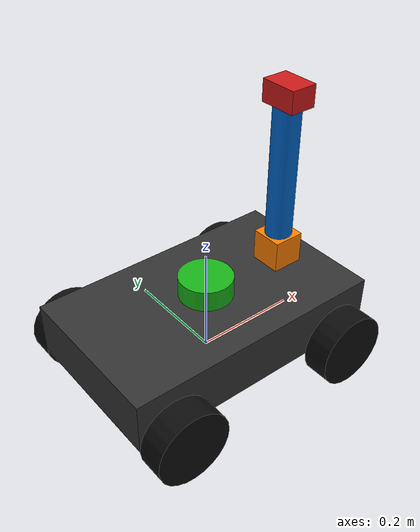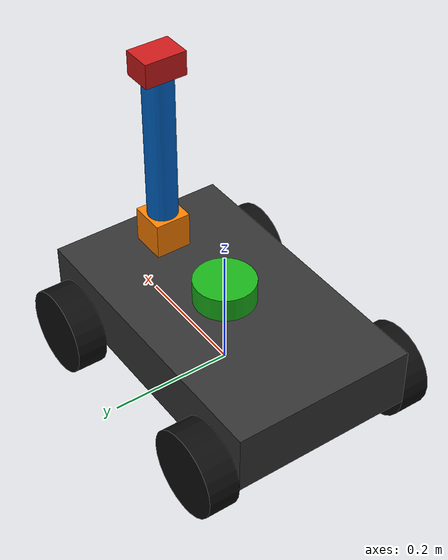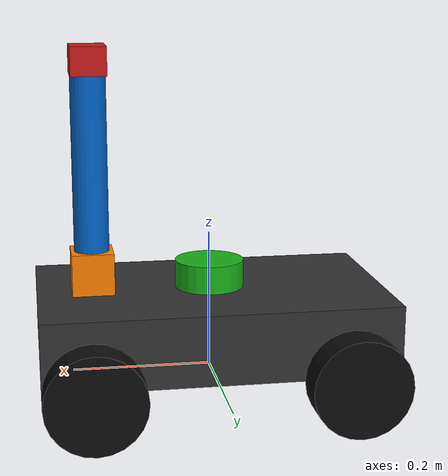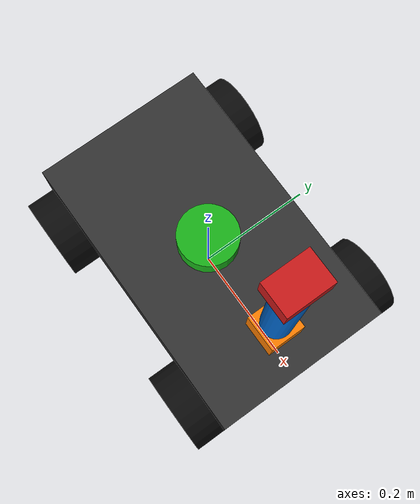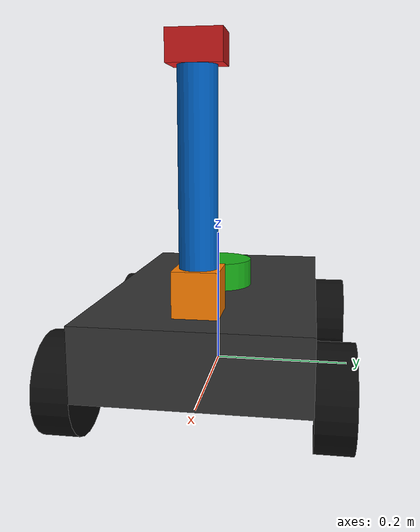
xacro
<?xml version="1.0"?>
<robot xmlns:xacro="http://www.ros.org/wiki/xacro" name="robot_car">

  <!-- ===== PROPERTIES ===== -->
  <xacro:property name="chassis_length" value="0.50"/>
  <xacro:property name="chassis_width"  value="0.30"/>
  <xacro:property name="chassis_height" value="0.10"/>
  <xacro:property name="chassis_mass"   value="5.0"/>
  <xacro:property name="wheel_radius"   value="0.07"/>
  <xacro:property name="wheel_width"    value="0.05"/>
  <xacro:property name="wheel_mass"     value="0.5"/>
  <xacro:property name="arm_length"     value="0.25"/>
  <xacro:property name="arm_radius"     value="0.025"/>
  <xacro:property name="arm_mass"       value="0.3"/>

  <!-- ===== MATERIALS ===== -->
  <material name="dark_grey"> <color rgba="0.2 0.2 0.2 1.0"/> </material>
  <material name="orange">    <color rgba="1.0 0.5 0.0 1.0"/> </material>
  <material name="blue">      <color rgba="0.0 0.4 0.8 1.0"/> </material>
  <material name="red">       <color rgba="0.8 0.1 0.1 1.0"/> </material>
  <material name="green">     <color rgba="0.1 0.7 0.1 1.0"/> </material>
  <material name="white">     <color rgba="1.0 1.0 1.0 1.0"/> </material>
  <material name="black">     <color rgba="0.05 0.05 0.05 1.0"/> </material>

  <!-- ===== INERTIA MACROS ===== -->
  <xacro:macro name="box_inertia" params="m l w h">
    <inertial>
      <mass value="${m}"/>
      <inertia ixx="${m*(w*w+h*h)/12}" ixy="0" ixz="0"
               iyy="${m*(l*l+h*h)/12}" iyz="0"
               izz="${m*(l*l+w*w)/12}"/>
    </inertial>
  </xacro:macro>

  <xacro:macro name="cylinder_inertia" params="m r h">
    <inertial>
      <mass value="${m}"/>
      <inertia ixx="${m*(3*r*r+h*h)/12}" ixy="0" ixz="0"
               iyy="${m*(3*r*r+h*h)/12}" iyz="0"
               izz="${m*r*r/2}"/>
    </inertial>
  </xacro:macro>

  <!-- ===== WHEEL MACRO ===== -->
  <xacro:macro name="wheel" params="name parent x y">
    <link name="${name}_wheel">
      <visual>
        <geometry><cylinder radius="${wheel_radius}" length="${wheel_width}"/></geometry>
        <material name="black"/>
      </visual>
      <collision>
        <geometry><cylinder radius="${wheel_radius}" length="${wheel_width}"/></geometry>
      </collision>
      <xacro:cylinder_inertia m="${wheel_mass}" r="${wheel_radius}" h="${wheel_width}"/>
    </link>

    <joint name="${name}_wheel_joint" type="continuous">
      <parent link="${parent}"/>
      <child  link="${name}_wheel"/>
      <origin xyz="${x} ${y} ${-chassis_height/2}" rpy="${pi/2} 0 0"/>
      <axis xyz="0 0 1"/>
      <dynamics damping="0.1" friction="0.1"/>
    </joint>

    <gazebo reference="${name}_wheel">
      <mu1>1.0</mu1>
      <mu2>1.0</mu2>
      <kp>500000.0</kp>
      <kd>10.0</kd>
      <material>Gazebo/Black</material>
    </gazebo>
  </xacro:macro>

  <!-- ===== CHASSIS ===== -->
  <link name="base_footprint"/>

  <joint name="base_joint" type="fixed">
    <parent link="base_footprint"/>
    <child  link="base_link"/>
    <origin xyz="0 0 ${wheel_radius}" rpy="0 0 0"/>
  </joint>

  <link name="base_link">
    <visual>
      <geometry><box size="${chassis_length} ${chassis_width} ${chassis_height}"/></geometry>
      <material name="dark_grey"/>
    </visual>
    <collision>
      <geometry><box size="${chassis_length} ${chassis_width} ${chassis_height}"/></geometry>
    </collision>
    <xacro:box_inertia m="${chassis_mass}" l="${chassis_length}" w="${chassis_width}" h="${chassis_height}"/>
  </link>

  <gazebo reference="base_link">
    <material>Gazebo/DarkGrey</material>
  </gazebo>

  <!-- ===== 4 WHEELS ===== -->
  <xacro:wheel name="front_left"  parent="base_link"
    x=" ${chassis_length/2 - 0.07}" y=" ${chassis_width/2 + wheel_width/2}"/>
  <xacro:wheel name="front_right" parent="base_link"
    x=" ${chassis_length/2 - 0.07}" y="${-chassis_width/2 - wheel_width/2}"/>
  <xacro:wheel name="rear_left"   parent="base_link"
    x="${-chassis_length/2 + 0.07}" y=" ${chassis_width/2 + wheel_width/2}"/>
  <xacro:wheel name="rear_right"  parent="base_link"
    x="${-chassis_length/2 + 0.07}" y="${-chassis_width/2 - wheel_width/2}"/>

  <!-- ===== ARM BASE ===== -->
  <link name="arm_base_link">
    <visual>
      <geometry><box size="0.06 0.06 0.06"/></geometry>
      <material name="orange"/>
    </visual>
    <collision>
      <geometry><box size="0.06 0.06 0.06"/></geometry>
    </collision>
    <xacro:box_inertia m="0.15" l="0.06" w="0.06" h="0.06"/>
  </link>

  <joint name="arm_base_joint" type="fixed">
    <parent link="base_link"/>
    <child  link="arm_base_link"/>
    <origin xyz="${chassis_length/2 - 0.08} 0 ${chassis_height/2 + 0.03}" rpy="0 0 0"/>
  </joint>

  <!-- ===== ARM LINK1 ===== -->
  <link name="arm_link1">
    <visual>
      <origin xyz="0 0 ${arm_length/2}" rpy="0 0 0"/>
      <geometry><cylinder radius="${arm_radius}" length="${arm_length}"/></geometry>
      <material name="blue"/>
    </visual>
    <collision>
      <origin xyz="0 0 ${arm_length/2}" rpy="0 0 0"/>
      <geometry><cylinder radius="${arm_radius}" length="${arm_length}"/></geometry>
    </collision>
    <xacro:cylinder_inertia m="${arm_mass}" r="${arm_radius}" h="${arm_length}"/>
  </link>

  <joint name="arm_joint1" type="revolute">
    <parent link="arm_base_link"/>
    <child  link="arm_link1"/>
    <origin xyz="0 0 0.03" rpy="0 0 0"/>
    <axis xyz="0 1 0"/>
    <limit lower="-1.57" upper="1.57" effort="10.0" velocity="1.0"/>
    <dynamics damping="0.5" friction="0.1"/>
  </joint>

  <!-- ===== CAMERA LINK ===== -->
  <link name="camera_link">
    <visual>
      <geometry><box size="0.05 0.07 0.04"/></geometry>
      <material name="red"/>
    </visual>
    <collision>
      <geometry><box size="0.05 0.07 0.04"/></geometry>
    </collision>
    <inertial>
      <mass value="0.1"/>
      <inertia ixx="0.0001" ixy="0" ixz="0" iyy="0.0001" iyz="0" izz="0.0001"/>
    </inertial>
  </link>

  <joint name="camera_joint" type="fixed">
    <parent link="arm_link1"/>
    <child  link="camera_link"/>
    <origin xyz="0 0 ${arm_length + 0.02}" rpy="0 0 0"/>
  </joint>

  <link name="camera_optical_frame"/>
  <joint name="camera_optical_joint" type="fixed">
    <parent link="camera_link"/>
    <child  link="camera_optical_frame"/>
    <origin xyz="0 0 0" rpy="${-pi/2} 0 ${-pi/2}"/>
  </joint>

  <gazebo reference="camera_link">
    <sensor name="depth_camera" type="depth_camera">
      <always_on>true</always_on>
      <update_rate>15</update_rate>
      <topic>depth_camera</topic>
      <gz_frame_id>camera_optical_frame</gz_frame_id>
      <camera name="depth_camera">
        <horizontal_fov>1.047</horizontal_fov>
        <image>
          <width>640</width>
          <height>480</height>
          <format>R_FLOAT32</format>
        </image>
        <clip><near>0.1</near><far>10.0</far></clip>
      </camera>
    </sensor>
    <sensor name="rgb_camera" type="camera">
      <always_on>true</always_on>
      <update_rate>15</update_rate>
      <topic>rgb_camera</topic>
      <gz_frame_id>camera_optical_frame</gz_frame_id>
      <camera name="rgb_camera">
        <horizontal_fov>1.047</horizontal_fov>
        <image>
          <width>640</width>
          <height>480</height>
          <format>RGB_INT8</format>
        </image>
        <clip><near>0.1</near><far>100.0</far></clip>
      </camera>
    </sensor>
    <material>Gazebo/Red</material>
  </gazebo>

  <!-- ===== LIDAR ===== -->
  <link name="lidar_link">
    <visual>
      <geometry><cylinder radius="0.05" length="0.04"/></geometry>
      <material name="green"/>
    </visual>
    <collision>
      <geometry><cylinder radius="0.05" length="0.04"/></geometry>
    </collision>
    <inertial>
      <mass value="0.2"/>
      <inertia ixx="0.0002" ixy="0" ixz="0" iyy="0.0002" iyz="0" izz="0.0002"/>
    </inertial>
  </link>

  <joint name="lidar_joint" type="fixed">
    <parent link="base_link"/>
    <child  link="lidar_link"/>
    <origin xyz="0 0 ${chassis_height/2 + 0.02}" rpy="0 0 0"/>
  </joint>

  <gazebo reference="lidar_link">
    <sensor name="lidar" type="gpu_lidar">
      <always_on>true</always_on>
      <update_rate>10</update_rate>
      <topic>scan</topic>
      <gz_frame_id>lidar_link</gz_frame_id>
      <visualize>true</visualize>
      <lidar>
        <scan>
          <horizontal>
            <samples>360</samples>
            <resolution>1</resolution>
            <min_angle>-3.14159</min_angle>
            <max_angle> 3.14159</max_angle>
          </horizontal>
        </scan>
        <range>
          <min>0.15</min>
          <max>12.0</max>
          <resolution>0.01</resolution>
        </range>
        <noise>
          <type>gaussian</type>
          <mean>0.0</mean>
          <stddev>0.005</stddev>
        </noise>
      </lidar>
    </sensor>
    <material>Gazebo/Green</material>
  </gazebo>

  <!-- ===== IMU ===== -->
  <link name="imu_link">
    <visual>
      <geometry><box size="0.03 0.03 0.01"/></geometry>
      <material name="white"/>
    </visual>
    <collision>
      <geometry><box size="0.03 0.03 0.01"/></geometry>
    </collision>
    <inertial>
      <mass value="0.05"/>
      <inertia ixx="0.000001" ixy="0" ixz="0" iyy="0.000001" iyz="0" izz="0.000001"/>
    </inertial>
  </link>

  <joint name="imu_joint" type="fixed">
    <parent link="base_link"/>
    <child  link="imu_link"/>
    <origin xyz="0 0 0" rpy="0 0 0"/>
  </joint>

  <gazebo reference="imu_link">
    <sensor name="imu" type="imu">
      <always_on>true</always_on>
      <update_rate>100</update_rate>
      <topic>imu</topic>
      <gz_frame_id>imu_link</gz_frame_id>
      <imu>
        <angular_velocity>
          <x><noise type="gaussian"><mean>0</mean><stddev>0.009</stddev></noise></x>
          <y><noise type="gaussian"><mean>0</mean><stddev>0.009</stddev></noise></y>
          <z><noise type="gaussian"><mean>0</mean><stddev>0.009</stddev></noise></z>
        </angular_velocity>
        <linear_acceleration>
          <x><noise type="gaussian"><mean>0</mean><stddev>0.1</stddev></noise></x>
          <y><noise type="gaussian"><mean>0</mean><stddev>0.1</stddev></noise></y>
          <z><noise type="gaussian"><mean>0</mean><stddev>0.1</stddev></noise></z>
        </linear_acceleration>
      </imu>
    </sensor>
    <material>Gazebo/White</material>
  </gazebo>

  <!-- ===== ROS2 CONTROL ===== -->

  <ros2_control name="IgnitionSystem" type="system">
    <hardware>
      <plugin>ign_ros2_control/IgnitionSystem</plugin>
    </hardware>
    <joint name="arm_joint1">
      <command_interface name="position">
        <param name="min">-1.57</param>
        <param name="max"> 1.57</param>
      </command_interface>
      <state_interface name="position"/>
      <state_interface name="velocity"/>
    </joint>
    <joint name="front_left_wheel_joint">
      <command_interface name="velocity"/>
      <state_interface name="position"/>
      <state_interface name="velocity"/>
    </joint>
    <joint name="front_right_wheel_joint">
      <command_interface name="velocity"/>
      <state_interface name="position"/>
      <state_interface name="velocity"/>
    </joint>
    <joint name="rear_left_wheel_joint">
      <command_interface name="velocity"/>
      <state_interface name="position"/>
      <state_interface name="velocity"/>
    </joint>
    <joint name="rear_right_wheel_joint">
      <command_interface name="velocity"/>
      <state_interface name="position"/>
      <state_interface name="velocity"/>
    </joint>
  </ros2_control>

  <gazebo>
    <plugin filename="/opt/ros/humble/lib/libign_ros2_control-system.so"
            name="ign_ros2_control::IgnitionROS2ControlPlugin">
      <parameters>$(find robotsensor)/config/control.yaml</parameters>
      <robot_param>robot_description</robot_param>
      <robot_param_node>robot_state_publisher</robot_param_node>
    </plugin>
  </gazebo>

</robot>
